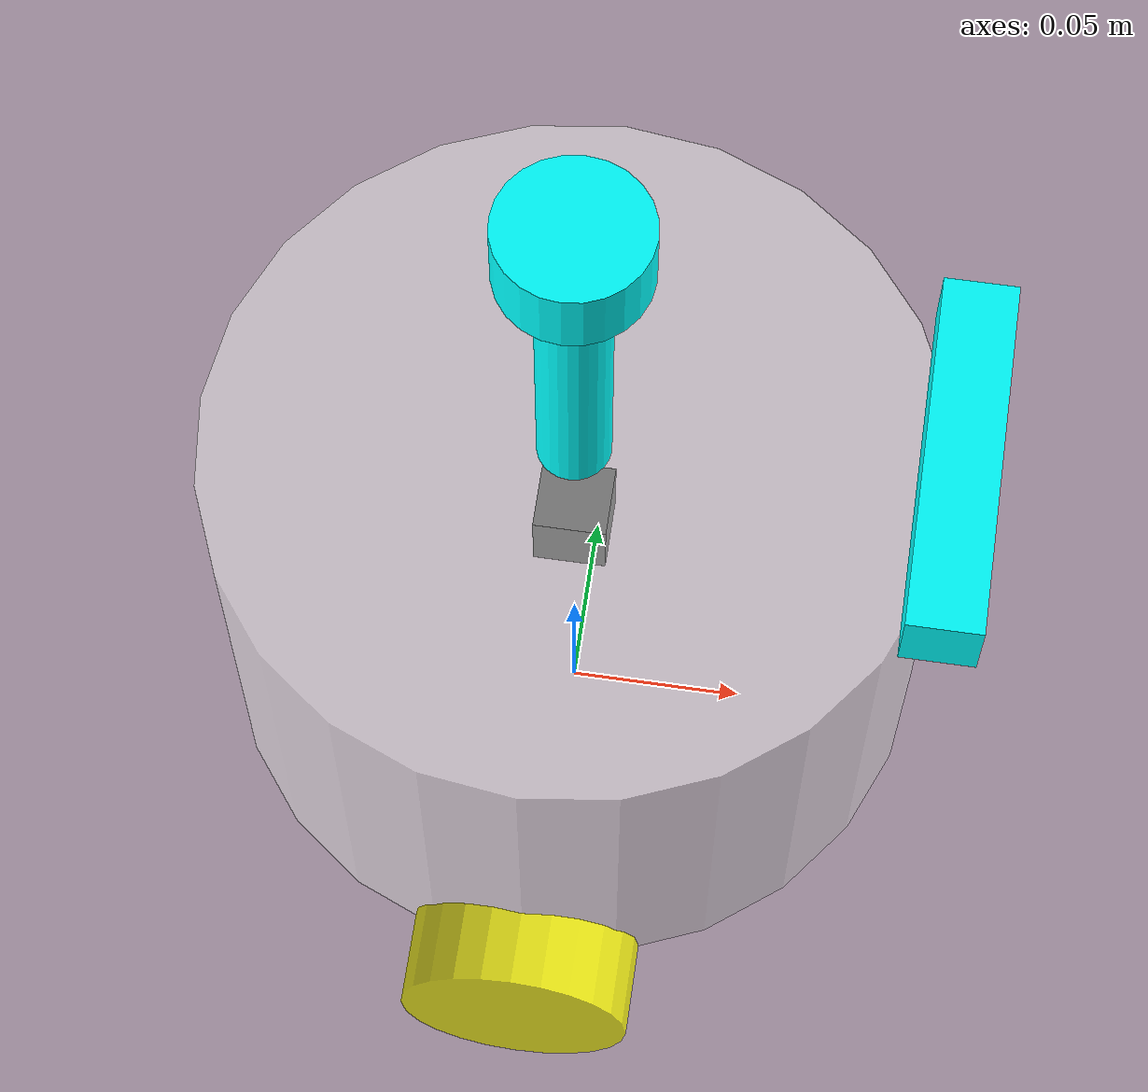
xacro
<?xml version="1.0"?>
<robot xmlns:xacro="http://www.ros.org/wiki/xacro" name="dongbot">
<!-- 包含文件 find dongbot_description 为找到功能包的路径 -->
<!-- 基础部分 base_link -->
<xacro:include filename="$(find dongbot_description)/urdf/dongbot/base.urdf.xacro"/>
<!-- 传感器部分 -->
<xacro:include filename="$(find dongbot_description)/urdf/dongbot/sensor/laser.urdf.xacro"/>
<xacro:include filename="$(find dongbot_description)/urdf/dongbot/sensor/imu.urdf.xacro"/>
<xacro:include filename="$(find dongbot_description)/urdf/dongbot/sensor/camera.urdf.xacro"/>
<!-- 执行器部分 -->
<xacro:include filename="$(find dongbot_description)/urdf/dongbot/actuator/wheel.urdf.xacro"/>
<xacro:include filename="$(find dongbot_description)/urdf/dongbot/actuator/caster.urdf.xacro"/>
<!-- 插件 -->
<xacro:include filename="$(find dongbot_description)/urdf/dongbot/plugins/gazebo_control_plugin.xacro"/>
<xacro:include filename="$(find dongbot_description)/urdf/dongbot/plugins/gazebo_sensor_plugin.xacro"/>
<xacro:include filename="$(find dongbot_description)/urdf/dongbot/dongbot.ros2_control.xacro"/>

<!-- 从导入的宏 创建机器人的身体 -->
<!-- 创建基础 -->
<xacro:base_xacro length="0.12" radius="0.10"/>

<!-- 创建传感器 -->
<xacro:imu_xacro xyz="0.0 0.0 0.02"/>
<xacro:camera_xacro xyz="0.1 0.0 0.075"/>
<xacro:laser_xacro xyz="0.0 0.0 0.11"/>

<!-- 创建执行器 -->
<xacro:wheel_xacro wheel_name="left_wheel" xyz="0 0.10 -0.06"/>
<xacro:wheel_xacro wheel_name="right_wheel" xyz="0 -0.10 -0.06"/>
<xacro:caster_xacro caster_name="front_wheel" xyz="0.08 0 -0.076"/>
<xacro:caster_xacro caster_name="back_wheel" xyz="-0.08 0 -0.076"/>

<!-- 创建传感器 -->
<xacro:gazebo_sensor_plugin/>

<!-- 使用ros2_control -->
<xacro:dongbot_ros2_control/>

</robot>

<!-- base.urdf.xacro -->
<robot xmlns:xacro="http://www.ros.org/wiki/xacro">
    <!-- 使用定义好的惯性部件 -->
    <xacro:include filename="$(find dongbot_description)/urdf/dongbot/common_intertia.xacro"/>
    <xacro:macro name="base_xacro" params="length radius">
        <!-- 底板 添加一个虚拟部件-->
        <link name = "base_footprint" />
        <link name="base_link">
            <!-- 部件的外观描述 -->
            <visual>
                <!-- 沿着自己几何中心的偏移 和旋转量 -->
                <origin rpy="0 0 0" xyz="0 0 0"/>
                <!-- 几何形状 -->
                <geometry>
                    <!-- 圆柱体 radius 半径 0.10m 高度 length 0.12m -->
                    <cylinder radius="${radius}" length="${length}"/>
                </geometry>
                <!-- 材质颜色 -->
                <material name="white">
                    <color rgba="1 1 1 0.5"/>
                </material>
            </visual>

            <collision>
                <!-- 沿着自己几何中心的偏移 和旋转量 -->
                <origin rpy="0 0 0" xyz="0 0 0"/>
                <!-- 几何形状 -->
                <geometry>
                    <!-- 圆柱体 radius 半径 0.10m 高度 length 0.12m -->
                    <cylinder radius="${radius}" length="${length}"/>
                </geometry>
                <!-- 材质颜色 -->
                <material name="white">
                    <color rgba="1 1 1 0.5"/>
                </material>
            </collision>

            <xacro:cylinder_inertia m="1.0" r="${radius}" h="${length}"/>
        </link>

        <joint name="joint_name" type="fixed">
            <origin xyz="0 0 ${length/2.0 + 0.032 - 0.001}" rpy="0 0 0"/>
            <parent link="base_footprint"/>
            <child link="base_link"/>
        </joint>
    </xacro:macro>
</robot>

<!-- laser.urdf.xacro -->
<robot xmlns:xacro="http://www.ros.org/wiki/xacro">
    <xacro:include filename="$(find dongbot_description)/urdf/dongbot/common_intertia.xacro"/>
    <xacro:macro name="laser_xacro" params="xyz">
        <!-- 激光雷达支撑杆 -->
        <link name="laser_cylinder_link">
        <!-- 部件的外观描述 -->
            <visual>
                <!-- 沿着自己几何中心的偏移 和旋转量 -->
                <origin rpy="0 0 0" xyz="0 0 0"/>
                <!-- 几何形状 -->
                <geometry>
                    <!-- 圆柱体 半径为0.01 轴长为0.1 -->
                    <cylinder radius="0.01" length="0.1"/>
                </geometry>
                <!-- 材质颜色 -->
                <material name="cyan">
                    <color rgba="0 1 1 1"/>
                </material>
            </visual>

            <collision>
                                <!-- 沿着自己几何中心的偏移 和旋转量 -->
                <origin rpy="0 0 0" xyz="0 0 0"/>
                <!-- 几何形状 -->
                <geometry>
                    <!-- 圆柱体 半径为0.01 轴长为0.1 -->
                    <cylinder radius="0.01" length="0.1"/>
                </geometry>
                <!-- 材质颜色 -->
                <material name="cyan">
                    <color rgba="0 1 1 1"/>
                </material>
            </collision>

            <xacro:cylinder_inertia m="0.05" r="0.01" h="0.10"/>
        </link>

        <!-- 激光雷达 -->
        <link name="laser_link">
        <!-- 部件的外观描述 -->
            <visual>
                <!-- 沿着自己几何中心的偏移 和旋转量 -->
                <origin rpy="0 0 0" xyz="0 0 0"/>
                <!-- 几何形状 -->
                <geometry>
                    <!-- 圆柱体 半径为0.02 轴长为0.02 -->
                    <cylinder radius="0.02" length="0.02"/>
                </geometry>
                <!-- 材质颜色 -->
                <material name="cyan">
                    <color rgba="0 1 1 1"/>
                </material>
            </visual>

            <collision>
                <!-- 沿着自己几何中心的偏移 和旋转量 -->
                <origin rpy="0 0 0" xyz="0 0 0"/>
                <!-- 几何形状 -->
                <geometry>
                    <!-- 圆柱体 半径为0.02 轴长为0.02 -->
                    <cylinder radius="0.02" length="0.02"/>
                </geometry>
                <!-- 材质颜色 -->
                <material name="cyan">
                    <color rgba="0 1 1 1"/>
                </material>
            </collision>
            <xacro:cylinder_inertia m="0.10" r="0.02" h="0.02"/>

        </link>

        <!-- 固定激光雷达 -->
        <joint name="laser_joint" type="fixed">
            <parent link="laser_cylinder_link"/>
            <child link="laser_link"/>
            <origin xyz="0.0 0.0 0.05" rpy="0.0 0.0 0.0"/>
        </joint>

        <joint name="laser_cylinder_joint" type="fixed">
            <parent link="base_link"/>
            <child link="laser_cylinder_link"/>
            <origin xyz="${xyz}" rpy="0.0 0.0 0.0"/>
        </joint>

        <!-- 在gazebo中显示为黑色 -->
        <gazebo reference="laser_cylinder_link">
            <material>Gazebo/Black</material>
        </gazebo>

        <gazebo reference="laser_link">
            <material>Gazebo/Black</material>
        </gazebo>

    </xacro:macro>
</robot>

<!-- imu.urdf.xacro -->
<robot xmlns:xacro="http://www.ros.org/wiki/xacro">
    <xacro:include filename="$(find dongbot_description)/urdf/dongbot/common_intertia.xacro"/>
    <xacro:macro name="imu_xacro" params="xyz">
        <!-- IMU惯性测量单元 -->
        <link name="imu_link">
        <!-- 部件的外观描述 -->
            <visual>
                <!-- 沿着自己几何中心的偏移 和旋转量 -->
                <origin rpy="0 0 0" xyz="0 0 0"/>
                <!-- 几何形状 -->
                <geometry>
                    <!-- 长方体 长宽高者为2cm -->
                    <box size="0.02 0.02 0.02"/>
                </geometry>
                <!-- 材质颜色 -->
                <material name="black">
                    <color rgba="0 0 0 1"/>
                </material>
            </visual>

            <collision>
                <!-- 沿着自己几何中心的偏移 和旋转量 -->
                <origin rpy="0 0 0" xyz="0 0 0"/>
                <!-- 几何形状 -->
                <geometry>
                    <!-- 长方体 长宽高者为2cm -->
                    <box size="0.02 0.02 0.02"/>
                </geometry>
                <!-- 材质颜色 -->
                <material name="black">
                    <color rgba="0 0 0 1"/>
                </material>
            </collision>

            <xacro:box_inertia m="0.05" w="0.02" h="0.02" d="0.02"/>
        </link>
        <!-- 机器人的关节，用于组合机器人的部件 -->
        <joint name="imu_joint" type="fixed">
            <parent link="base_link"/>
            <child link="imu_link"/>
            <origin xyz="${xyz}" rpy="0.0 0.0 0.0"/>
        </joint>
    </xacro:macro>
</robot>

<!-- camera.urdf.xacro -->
<robot xmlns:xacro="http://www.ros.org/wiki/xacro">
    <xacro:include filename="$(find dongbot_description)/urdf/dongbot/common_intertia.xacro"/>
    <xacro:macro name="camera_xacro" params="xyz">
        <!-- 相机 -->
        <link name="camera_link">
        <!-- 部件的外观描述 -->
            <visual>
                <!-- 沿着自己几何中心的偏移 和旋转量 -->
                <origin rpy="0 0 0" xyz="0 0 0"/>
                <!-- 几何形状 -->
                <geometry>
                    <!-- 长方体 长宽高者为2cm -->
                    <box size="0.02 0.10 0.02"/>
                </geometry>
                <!-- 材质颜色 -->
                <material name="cyan">
                    <color rgba="0 1 1 1"/>
                </material>
            </visual>

            <collision>
                <!-- 沿着自己几何中心的偏移 和旋转量 -->
                <origin rpy="0 0 0" xyz="0 0 0"/>
                <!-- 几何形状 -->
                <geometry>
                    <!-- 长方体 长宽高者为2cm -->
                    <box size="0.02 0.10 0.02"/>
                </geometry>
                <!-- 材质颜色 -->
                <material name="cyan">
                    <color rgba="0 1 1 1"/>
                </material>
            </collision>
            <xacro:box_inertia m="0.05" w="0.02" h="0.1" d="0.02"/>
        </link>

        <link name="camera_optical_link"></link>

        <!-- 机器人的关节，用于组合机器人的部件 -->
        <joint name="camera_joint" type="fixed">
            <parent link="base_link"/>
            <child link="camera_link"/>
            <origin xyz="${xyz}" rpy="0.0 0.0 0.0"/>
        </joint>

        <!-- 机器人的关节，用于组合机器人的部件 -->
        <joint name="camera_optical_joint" type="fixed">
            <parent link="camera_link"/>
            <child link="camera_optical_link"/>
            <origin xyz="0 0 0" rpy="${-pi/2} 0.0 ${-pi/2}"/>
        </joint>

    </xacro:macro>
</robot>

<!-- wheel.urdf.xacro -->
<robot xmlns:xacro="http://www.ros.org/wiki/xacro">
    <xacro:include filename="$(find dongbot_description)/urdf/dongbot/common_intertia.xacro"/>
    <xacro:macro name="wheel_xacro" params="wheel_name xyz">
        <!-- 执行器轮子单元 -->
        <link name="${wheel_name}_link">
        <!-- 部件的外观描述 -->
            <visual>
                <!-- 沿着自己几何中心的偏移 和旋转量 -->
                <origin rpy="1.57079 0 0" xyz="0 0 0"/>
                <!-- 几何形状 -->
                <geometry>
                    <!-- 长方体 长宽高者为2cm -->
                    <cylinder radius="0.032" length="0.04"/>
                </geometry>
                <!-- 材质颜色 -->
                <material name="yellow">
                    <color rgba="1 1 0 0.8"/>
                </material>
            </visual>

            <collision>
                <!-- 沿着自己几何中心的偏移 和旋转量 -->
                <origin rpy="1.57079 0 0" xyz="0 0 0"/>
                <!-- 几何形状 -->
                <geometry>
                    <!-- 长方体 长宽高者为2cm -->
                    <cylinder radius="0.032" length="0.04"/>
                </geometry>
                <!-- 材质颜色 -->
                <material name="yellow">
                    <color rgba="1 1 0 0.8"/>
                </material>
            </collision>
            <xacro:cylinder_inertia m="0.05" r="0.032" h="0.04"/>
        </link>
        <!-- 机器人的关节，用于组合机器人的部件 -->
        <joint name="${wheel_name}_joint" type="continuous">
            <parent link="base_link"/>
            <child link="${wheel_name}_link"/>
            <origin xyz="${xyz}" rpy="0.0 0.0 0.0"/>
            <axis xyz="0 1 0"/>
        </joint>

        <gazebo reference="${wheel_name}_link">
            <mu1 value="20.0"/>
            <mu2 value="20.0"/>
            <kp value="1000000000.0"/>
            <kd value="1.0"/>
        </gazebo>

    </xacro:macro>
</robot>

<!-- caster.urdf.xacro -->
<!-- 表明使用xacro的描述方式 来构建urdf文件 -->
<robot xmlns:xacro="http://www.ros.org/wiki/xacro">
    <xacro:include filename="$(find dongbot_description)/urdf/dongbot/common_intertia.xacro"/>
    <xacro:macro name="caster_xacro" params="caster_name xyz">
        <!-- 执行器轮子单元 -->
        <link name="${caster_name}_link">
        <!-- 部件的外观描述 -->
            <visual>
                <!-- 沿着自己几何中心的偏移 和旋转量 -->
                <origin rpy="0 0 0" xyz="0 0 0"/>
                <!-- 几何形状 -->
                <geometry>
                    <!-- 长方体 长宽高者为2cm -->
                    <sphere radius="0.016"/>
                </geometry>
                <!-- 材质颜色 -->
                <material name="fuchsia">
                    <color rgba="1 0 1 0.8"/>
                </material>
            </visual>

            <collision>
                <!-- 沿着自己几何中心的偏移 和旋转量 -->
                <origin rpy="0 0 0" xyz="0 0 0"/>
                <!-- 几何形状 -->
                <geometry>
                    <!-- 长方体 长宽高者为2cm -->
                    <sphere radius="0.016"/>
                </geometry>
                <!-- 材质颜色 -->
                <material name="fuchsia">
                    <color rgba="1 0 1 0.8"/>
                </material>
            </collision>
            <xacro:sphere_inertia m="0.05" r="0.016"/>
        </link>
        <!-- 机器人的关节，用于组合机器人的部件 -->
        <!-- 万向轮旋不旋转 无所谓 -->
        <joint name="${caster_name}_joint" type="fixed">
            <parent link="base_link"/>
            <child link="${caster_name}_link"/>
            <origin xyz="${xyz}" rpy="0.0 0.0 0.0"/>
        </joint>

        <gazebo reference="${caster_name}_link">
            <mu1 value="0.0"/>
            <mu2 value="0.0"/>
            <kp value="1000000000.0"/>
            <kd value="1.0"/>
        </gazebo>

    </xacro:macro>
</robot>
